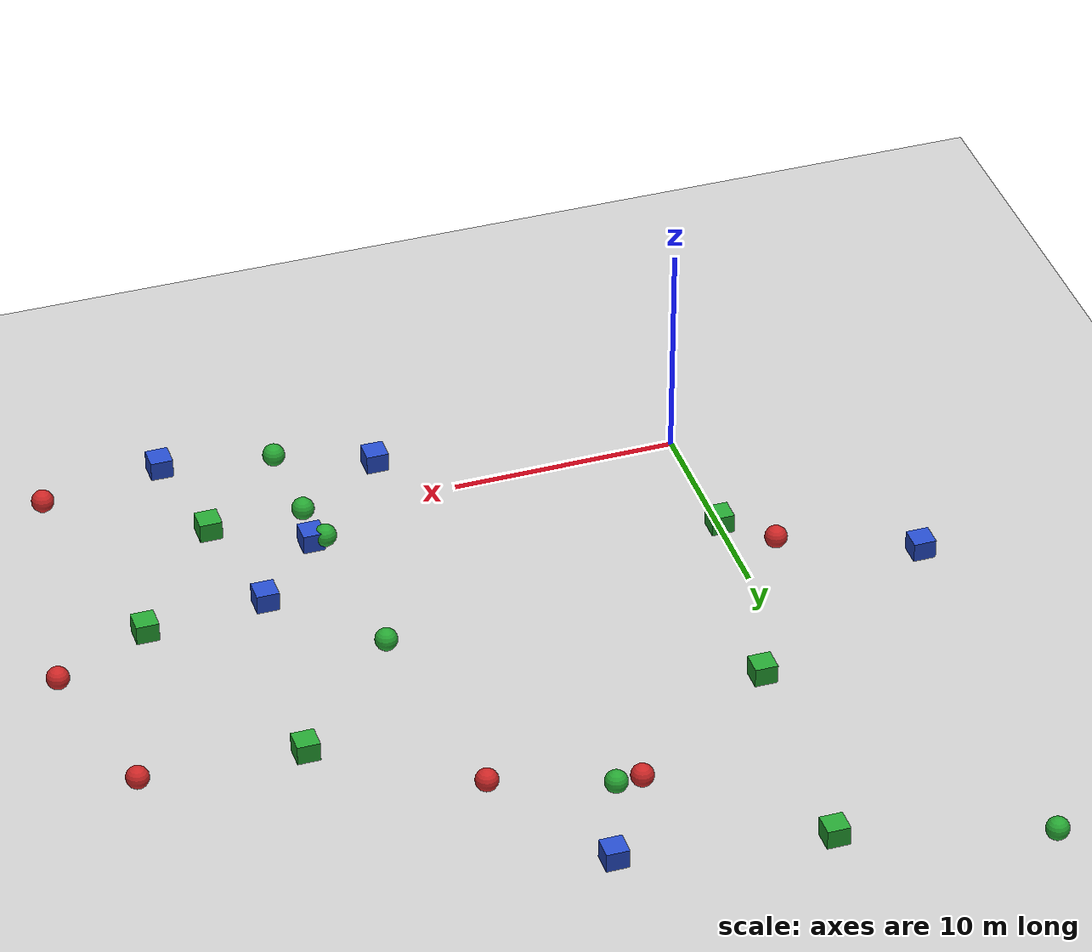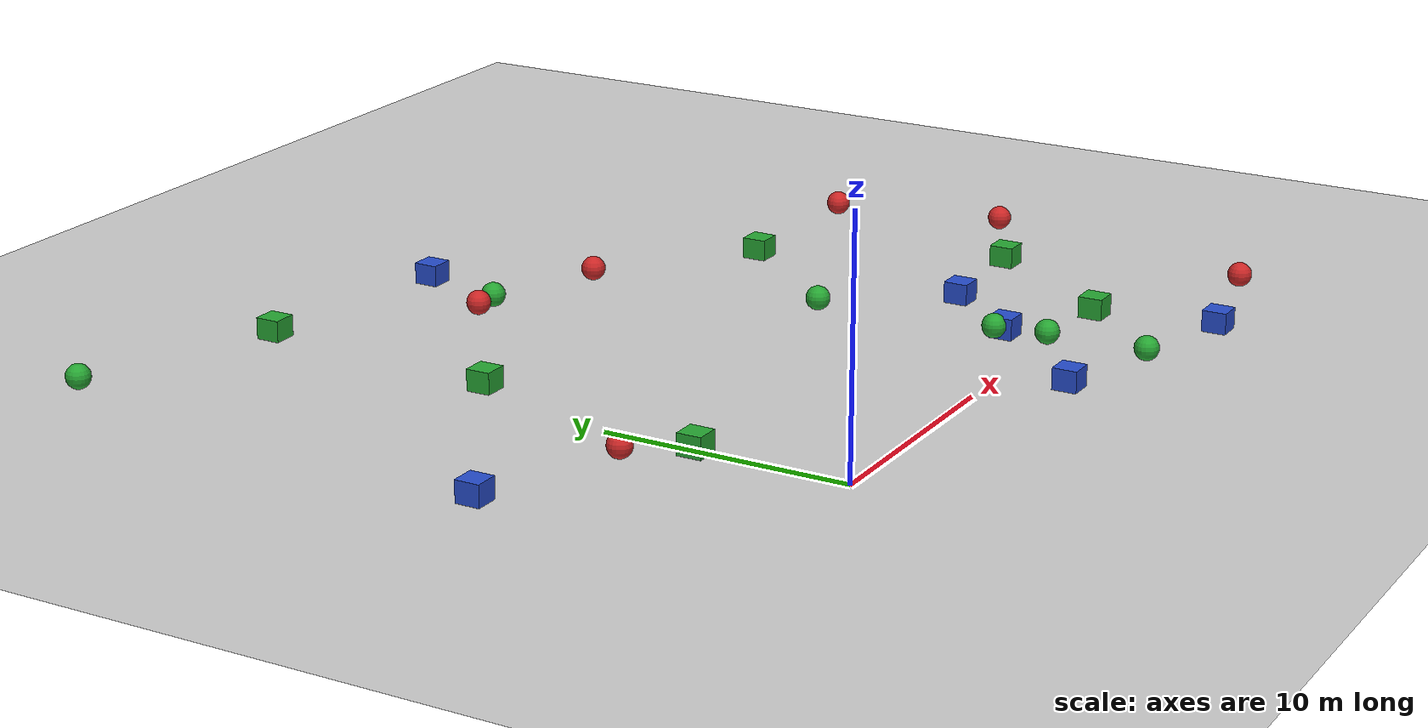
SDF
<sdf version="1.6">
 <world name="default">
  <light name="sun" type="directional">
   <pose>0 0 10 0 -0 0</pose>
   <diffuse>0.8 0.8 0.8 1</diffuse>
   <specular>0.1 0.1 0.1 1</specular>
   <attenuation>
    <range>1000</range>
    <constant>0.9</constant>
    <linear>0.01</linear>
    <quadratic>0.001</quadratic>
   </attenuation>
   <direction>-0.5 0.5 -1</direction>
  </light>
  <model name="ground_plane">
   <static>1</static>
   <link name="link">
    <collision name="collision">
     <geometry><plane><normal>0 0 1</normal><size>100 100</size></plane></geometry>
     <surface><friction><ode><mu>100</mu><mu2>50</mu2></ode></friction></surface>
    </collision>
    <visual name="visual">
     <cast_shadows>0</cast_shadows>
     <geometry><plane><normal>0 0 1</normal><size>100 100</size></plane></geometry>
     <material>
      <script><uri>file://media/materials/scripts/gazebo.material</uri><name>Gazebo/Grey</name></script>
     </material>
    </visual>
   </link>
  </model>
  <model name="unit_sphere_red_6">
   <pose>14.8051550009 19.5946333513 0.5 0 -0 0</pose>
   <link name="link">
    <inertial>
     <mass>1</mass>
     <inertia><ixx>0.1</ixx><ixy>0</ixy><ixz>0</ixz><iyy>0.1</iyy><iyz>0</iyz><izz>0.1</izz></inertia>
    </inertial>
    <collision name="collision"><geometry><sphere><radius>0.5</radius></sphere></geometry></collision>
    <visual name="visual">
     <geometry><sphere><radius>0.5</radius></sphere></geometry>
     <material>
      <script><name>Gazebo/Red</name><uri>file://media/materials/scripts/gazebo.material</uri></script>
     </material>
    </visual>
   </link>
  </model>
  <model name="unit_sphere_red_5">
   <pose>28.2002735825 15.0374868698 0.5 0 -0 0</pose>
   <link name="link">
    <inertial>
     <mass>1</mass>
     <inertia><ixx>0.1</ixx><ixy>0</ixy><ixz>0</ixz><iyy>0.1</iyy><iyz>0</iyz><izz>0.1</izz></inertia>
    </inertial>
    <collision name="collision"><geometry><sphere><radius>0.5</radius></sphere></geometry></collision>
    <visual name="visual">
     <geometry><sphere><radius>0.5</radius></sphere></geometry>
     <material>
      <script><name>Gazebo/Red</name><uri>file://media/materials/scripts/gazebo.material</uri></script>
     </material>
    </visual>
   </link>
  </model>
  <model name="unit_sphere_red_4">
   <pose>-1.87471702129 8.22636273952 0.5 0 -0 0</pose>
   <link name="link">
    <inertial>
     <mass>1</mass>
     <inertia><ixx>0.1</ixx><ixy>0</ixy><ixz>0</ixz><iyy>0.1</iyy><iyz>0</iyz><izz>0.1</izz></inertia>
    </inertial>
    <collision name="collision"><geometry><sphere><radius>0.5</radius></sphere></geometry></collision>
    <visual name="visual">
     <geometry><sphere><radius>0.5</radius></sphere></geometry>
     <material>
      <script><name>Gazebo/Red</name><uri>file://media/materials/scripts/gazebo.material</uri></script>
     </material>
    </visual>
   </link>
  </model>
  <model name="unit_sphere_red_3">
   <pose>29.7426490951 7.89779689842 0.5 0 -0 0</pose>
   <link name="link">
    <inertial>
     <mass>1</mass>
     <inertia><ixx>0.1</ixx><ixy>0</ixy><ixz>0</ixz><iyy>0.1</iyy><iyz>0</iyz><izz>0.1</izz></inertia>
    </inertial>
    <collision name="collision"><geometry><sphere><radius>0.5</radius></sphere></geometry></collision>
    <visual name="visual">
     <geometry><sphere><radius>0.5</radius></sphere></geometry>
     <material>
      <script><name>Gazebo/Red</name><uri>file://media/materials/scripts/gazebo.material</uri></script>
     </material>
    </visual>
   </link>
  </model>
  <model name="unit_sphere_red_2">
   <pose>8.72689595229 21.2751176439 0.5 0 -0 0</pose>
   <link name="link">
    <inertial>
     <mass>1</mass>
     <inertia><ixx>0.1</ixx><ixy>0</ixy><ixz>0</ixz><iyy>0.1</iyy><iyz>0</iyz><izz>0.1</izz></inertia>
    </inertial>
    <collision name="collision"><geometry><sphere><radius>0.5</radius></sphere></geometry></collision>
    <visual name="visual">
     <geometry><sphere><radius>0.5</radius></sphere></geometry>
     <material>
      <script><name>Gazebo/Red</name><uri>file://media/materials/scripts/gazebo.material</uri></script>
     </material>
    </visual>
   </link>
  </model>
  <model name="unit_sphere_red_1">
   <pose>27.4633597187 -4.00871016137 0.5 0 -0 0</pose>
   <link name="link">
    <inertial>
     <mass>1</mass>
     <inertia><ixx>0.1</ixx><ixy>0</ixy><ixz>0</ixz><iyy>0.1</iyy><iyz>0</iyz><izz>0.1</izz></inertia>
    </inertial>
    <collision name="collision"><geometry><sphere><radius>0.5</radius></sphere></geometry></collision>
    <visual name="visual">
     <geometry><sphere><radius>0.5</radius></sphere></geometry>
     <material>
      <script><name>Gazebo/Red</name><uri>file://media/materials/scripts/gazebo.material</uri></script>
     </material>
    </visual>
   </link>
  </model>
  <model name="unit_box_green_6">
   <pose>2.49262525886 26.7723398952 0.329741 0 -0 0</pose>
   <link name="link">
    <inertial>
     <mass>1</mass>
     <inertia>
      <ixx>0.166667</ixx>
      <ixy>0</ixy>
      <ixz>0</ixz>
      <iyy>0.166667</iyy>
      <iyz>0</iyz>
      <izz>0.166667</izz>
     </inertia>
    </inertial>
    <collision name="collision"><geometry><box><size>1 1 0.999999</size></box></geometry></collision>
    <visual name="visual">
     <geometry><box><size>1 1 0.999999</size></box></geometry>
     <material>
      <script><name>Gazebo/Green</name><uri>file://media/materials/scripts/gazebo.material</uri></script>
     </material>
    </visual>
   </link>
  </model>
  <model name="unit_box_green_5">
   <pose>21.1698047924 15.2010513041 0.329741 0 -0 0</pose>
   <link name="link">
    <inertial>
     <mass>1</mass>
     <inertia>
      <ixx>0.166667</ixx>
      <ixy>0</ixy>
      <ixz>0</ixz>
      <iyy>0.166667</iyy>
      <iyz>0</iyz>
      <izz>0.166667</izz>
     </inertia>
    </inertial>
    <collision name="collision"><geometry><box><size>1 1 0.999999</size></box></geometry></collision>
    <visual name="visual">
     <geometry><box><size>1 1 0.999999</size></box></geometry>
     <material>
      <script><name>Gazebo/Green</name><uri>file://media/materials/scripts/gazebo.material</uri></script>
     </material>
    </visual>
   </link>
  </model>
  <model name="unit_box_green_4">
   <pose>25.4312614936 5.65276791136 0.329741 0 -0 0</pose>
   <link name="link">
    <inertial>
     <mass>1</mass>
     <inertia>
      <ixx>0.166667</ixx>
      <ixy>0</ixy>
      <ixz>0</ixz>
      <iyy>0.166667</iyy>
      <iyz>0</iyz>
      <izz>0.166667</izz>
     </inertia>
    </inertial>
    <collision name="collision"><geometry><box><size>1 1 0.999999</size></box></geometry></collision>
    <visual name="visual">
     <geometry><box><size>1 1 0.999999</size></box></geometry>
     <material>
      <script><name>Gazebo/Green</name><uri>file://media/materials/scripts/gazebo.material</uri></script>
     </material>
    </visual>
   </link>
  </model>
  <model name="unit_box_green_3">
   <pose>1.72804101117 16.3383363169 0.329741 0 -0 0</pose>
   <link name="link">
    <inertial>
     <mass>1</mass>
     <inertia>
      <ixx>0.166667</ixx>
      <ixy>0</ixy>
      <ixz>0</ixz>
      <iyy>0.166667</iyy>
      <iyz>0</iyz>
      <izz>0.166667</izz>
     </inertia>
    </inertial>
    <collision name="collision"><geometry><box><size>1 1 0.999999</size></box></geometry></collision>
    <visual name="visual">
     <geometry><box><size>1 1 0.999999</size></box></geometry>
     <material>
      <script><name>Gazebo/Green</name><uri>file://media/materials/scripts/gazebo.material</uri></script>
     </material>
    </visual>
   </link>
  </model>
  <model name="unit_box_green_2">
   <pose>-0.0327930186225 6.18543099294 0.329741 0 -0 0</pose>
   <link name="link">
    <inertial>
     <mass>1</mass>
     <inertia>
      <ixx>0.166667</ixx>
      <ixy>0</ixy>
      <ixz>0</ixz>
      <iyy>0.166667</iyy>
      <iyz>0</iyz>
      <izz>0.166667</izz>
     </inertia>
    </inertial>
    <collision name="collision"><geometry><box><size>1 1 0.999999</size></box></geometry></collision>
    <visual name="visual">
     <geometry><box><size>1 1 0.999999</size></box></geometry>
     <material>
      <script><name>Gazebo/Green</name><uri>file://media/materials/scripts/gazebo.material</uri></script>
     </material>
    </visual>
   </link>
  </model>
  <model name="unit_box_green_1">
   <pose>21.0682244485 -0.232611266286 0.329741 0 -0 0</pose>
   <link name="link">
    <inertial>
     <mass>1</mass>
     <inertia>
      <ixx>0.166667</ixx>
      <ixy>0</ixy>
      <ixz>0</ixz>
      <iyy>0.166667</iyy>
      <iyz>0</iyz>
      <izz>0.166667</izz>
     </inertia>
    </inertial>
    <collision name="collision"><geometry><box><size>1 1 0.999999</size></box></geometry></collision>
    <visual name="visual">
     <geometry><box><size>1 1 0.999999</size></box></geometry>
     <material>
      <script><name>Gazebo/Green</name><uri>file://media/materials/scripts/gazebo.material</uri></script>
     </material>
    </visual>
   </link>
  </model>
  <model name="unit_sphere_green_6">
   <pose>17.0406501707 -4.08938341131 0.5 0 -0 0</pose>
   <link name="link">
    <inertial>
     <mass>1</mass>
     <inertia><ixx>0.1</ixx><ixy>0</ixy><ixz>0</ixz><iyy>0.1</iyy><iyz>0</iyz><izz>0.1</izz></inertia>
    </inertial>
    <collision name="collision"><geometry><sphere><radius>0.5</radius></sphere></geometry></collision>
    <visual name="visual">
     <geometry><sphere><radius>0.5</radius></sphere></geometry>
     <material>
      <script><name>Gazebo/Green</name><uri>file://media/materials/scripts/gazebo.material</uri></script>
     </material>
    </visual>
   </link>
  </model>
  <model name="unit_sphere_green_5">
   <pose>16.8894877747 0.00550322323695 0.5 0 -0 0</pose>
   <link name="link">
    <inertial>
     <mass>1</mass>
     <inertia><ixx>0.1</ixx><ixy>0</ixy><ixz>0</ixz><iyy>0.1</iyy><iyz>0</iyz><izz>0.1</izz></inertia>
    </inertial>
    <collision name="collision"><geometry><sphere><radius>0.5</radius></sphere></geometry></collision>
    <visual name="visual">
     <geometry><sphere><radius>0.5</radius></sphere></geometry>
     <material>
      <script><name>Gazebo/Green</name><uri>file://media/materials/scripts/gazebo.material</uri></script>
     </material>
    </visual>
   </link>
  </model>
  <model name="unit_sphere_green_4">
   <pose>16.4970827589 2.10800060294 0.5 0 -0 0</pose>
   <link name="link">
    <inertial>
     <mass>1</mass>
     <inertia><ixx>0.1</ixx><ixy>0</ixy><ixz>0</ixz><iyy>0.1</iyy><iyz>0</iyz><izz>0.1</izz></inertia>
    </inertial>
    <collision name="collision"><geometry><sphere><radius>0.5</radius></sphere></geometry></collision>
    <visual name="visual">
     <geometry><sphere><radius>0.5</radius></sphere></geometry>
     <material>
      <script><name>Gazebo/Green</name><uri>file://media/materials/scripts/gazebo.material</uri></script>
     </material>
    </visual>
   </link>
  </model>
  <model name="unit_sphere_green_3">
   <pose>9.85968669585 21.3153168055 0.5 0 -0 0</pose>
   <link name="link">
    <inertial>
     <mass>1</mass>
     <inertia><ixx>0.1</ixx><ixy>0</ixy><ixz>0</ixz><iyy>0.1</iyy><iyz>0</iyz><izz>0.1</izz></inertia>
    </inertial>
    <collision name="collision"><geometry><sphere><radius>0.5</radius></sphere></geometry></collision>
    <visual name="visual">
     <geometry><sphere><radius>0.5</radius></sphere></geometry>
     <material>
      <script><name>Gazebo/Green</name><uri>file://media/materials/scripts/gazebo.material</uri></script>
     </material>
    </visual>
   </link>
  </model>
  <model name="unit_sphere_green_2">
   <pose>16.0600331679 9.70452540581 0.5 0 -0 0</pose>
   <link name="link">
    <inertial>
     <mass>1</mass>
     <inertia><ixx>0.1</ixx><ixy>0</ixy><ixz>0</ixz><iyy>0.1</iyy><iyz>0</iyz><izz>0.1</izz></inertia>
    </inertial>
    <collision name="collision"><geometry><sphere><radius>0.5</radius></sphere></geometry></collision>
    <visual name="visual">
     <geometry><sphere><radius>0.5</radius></sphere></geometry>
     <material>
      <script><name>Gazebo/Green</name><uri>file://media/materials/scripts/gazebo.material</uri></script>
     </material>
    </visual>
   </link>
  </model>
  <model name="unit_sphere_green_1">
   <pose>-5.99197919293 29.5281092246 0.5 0 -0 0</pose>
   <link name="link">
    <inertial>
     <mass>1</mass>
     <inertia><ixx>0.1</ixx><ixy>0</ixy><ixz>0</ixz><iyy>0.1</iyy><iyz>0</iyz><izz>0.1</izz></inertia>
    </inertial>
    <collision name="collision"><geometry><sphere><radius>0.5</radius></sphere></geometry></collision>
    <visual name="visual">
     <geometry><sphere><radius>0.5</radius></sphere></geometry>
     <material>
      <script><name>Gazebo/Green</name><uri>file://media/materials/scripts/gazebo.material</uri></script>
     </material>
    </visual>
   </link>
  </model>
  <model name="unit_box_blue_6">
   <pose>21.9482393327 -5.15251020347 0.329741 0 -0 0</pose>
   <link name="link">
    <inertial>
     <mass>1</mass>
     <inertia>
      <ixx>0.166667</ixx>
      <ixy>0</ixy>
      <ixz>0</ixz>
      <iyy>0.166667</iyy>
      <iyz>0</iyz>
      <izz>0.166667</izz>
     </inertia>
    </inertial>
    <collision name="collision"><geometry><box><size>1 1 0.999999</size></box></geometry></collision>
    <visual name="visual">
     <geometry><box><size>1 1 0.999999</size></box></geometry>
     <material>
      <script><name>Gazebo/Blue</name><uri>file://media/materials/scripts/gazebo.material</uri></script>
     </material>
    </visual>
   </link>
  </model>
  <model name="unit_box_blue_5">
   <pose>-7.63352472197 10.5439802075 0.329741 0 -0 0</pose>
   <link name="link">
    <inertial>
     <mass>1</mass>
     <inertia>
      <ixx>0.166667</ixx>
      <ixy>0</ixy>
      <ixz>0</ixz>
      <iyy>0.166667</iyy>
      <iyz>0</iyz>
      <izz>0.166667</izz>
     </inertia>
    </inertial>
    <collision name="collision"><geometry><box><size>1 1 0.999999</size></box></geometry></collision>
    <visual name="visual">
     <geometry><box><size>1 1 0.999999</size></box></geometry>
     <material>
      <script><name>Gazebo/Blue</name><uri>file://media/materials/scripts/gazebo.material</uri></script>
     </material>
    </visual>
   </link>
  </model>
  <model name="unit_box_blue_4">
   <pose>11.3286795549 25.327972065 0.329741 0 -0 0</pose>
   <link name="link">
    <inertial>
     <mass>1</mass>
     <inertia>
      <ixx>0.166667</ixx>
      <ixy>0</ixy>
      <ixz>0</ixz>
      <iyy>0.166667</iyy>
      <iyz>0</iyz>
      <izz>0.166667</izz>
     </inertia>
    </inertial>
    <collision name="collision"><geometry><box><size>1 1 0.999999</size></box></geometry></collision>
    <visual name="visual">
     <geometry><box><size>1 1 0.999999</size></box></geometry>
     <material>
      <script><name>Gazebo/Blue</name><uri>file://media/materials/scripts/gazebo.material</uri></script>
     </material>
    </visual>
   </link>
  </model>
  <model name="unit_box_blue_3">
   <pose>12.8502202233 -2.66450622241 0.329741 0 -0 0</pose>
   <link name="link">
    <inertial>
     <mass>1</mass>
     <inertia>
      <ixx>0.166667</ixx>
      <ixy>0</ixy>
      <ixz>0</ixz>
      <iyy>0.166667</iyy>
      <iyz>0</iyz>
      <izz>0.166667</izz>
     </inertia>
    </inertial>
    <collision name="collision"><geometry><box><size>1 1 0.999999</size></box></geometry></collision>
    <visual name="visual">
     <geometry><box><size>1 1 0.999999</size></box></geometry>
     <material>
      <script><name>Gazebo/Blue</name><uri>file://media/materials/scripts/gazebo.material</uri></script>
     </material>
    </visual>
   </link>
  </model>
  <model name="unit_box_blue_2">
   <pose>20.0714748839 5.24571137403 0.329741 0 -0 0</pose>
   <link name="link">
    <inertial>
     <mass>1</mass>
     <inertia>
      <ixx>0.166667</ixx>
      <ixy>0</ixy>
      <ixz>0</ixz>
      <iyy>0.166667</iyy>
      <iyz>0</iyz>
      <izz>0.166667</izz>
     </inertia>
    </inertial>
    <collision name="collision"><geometry><box><size>1 1 0.999999</size></box></geometry></collision>
    <visual name="visual">
     <geometry><box><size>1 1 0.999999</size></box></geometry>
     <material>
      <script><name>Gazebo/Blue</name><uri>file://media/materials/scripts/gazebo.material</uri></script>
     </material>
    </visual>
   </link>
  </model>
  <model name="unit_box_blue_1">
   <pose>17.0593344744 1.89588240016 0.329741 0 -0 0</pose>
   <link name="link">
    <inertial>
     <mass>1</mass>
     <inertia>
      <ixx>0.166667</ixx>
      <ixy>0</ixy>
      <ixz>0</ixz>
      <iyy>0.166667</iyy>
      <iyz>0</iyz>
      <izz>0.166667</izz>
     </inertia>
    </inertial>
    <collision name="collision"><geometry><box><size>1 1 0.999999</size></box></geometry></collision>
    <visual name="visual">
     <geometry><box><size>1 1 0.999999</size></box></geometry>
     <material>
      <script><name>Gazebo/Blue</name><uri>file://media/materials/scripts/gazebo.material</uri></script>
     </material>
    </visual>
   </link>
  </model>
  <gravity>0 0 -9.8</gravity>
  <magnetic_field>6e-06 2.3e-05 -4.2e-05</magnetic_field>
  <atmosphere type="adiabatic"/>
  <physics default="0" name="default_physics" type="ode">
   <max_step_size>0.001</max_step_size>
   <real_time_factor>1</real_time_factor>
   <real_time_update_rate>1000</real_time_update_rate>
  </physics>
  <scene><ambient>0.4 0.4 0.4 1</ambient><background>0.7 0.7 0.7 1</background><shadows>1</shadows></scene>
  <spherical_coordinates>
   <surface_model>EARTH_WGS84</surface_model>
   <latitude_deg>0</latitude_deg>
   <longitude_deg>0</longitude_deg>
   <elevation>0</elevation>
   <heading_deg>0</heading_deg>
  </spherical_coordinates>
 </world>
</sdf>
